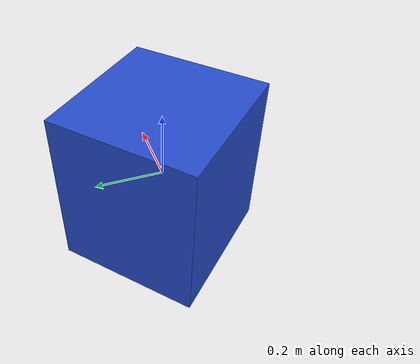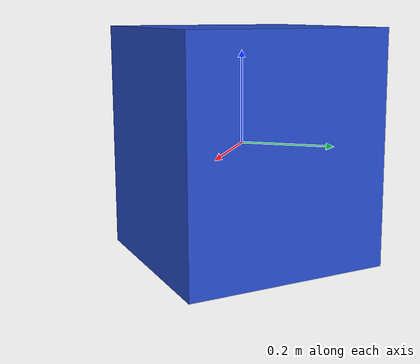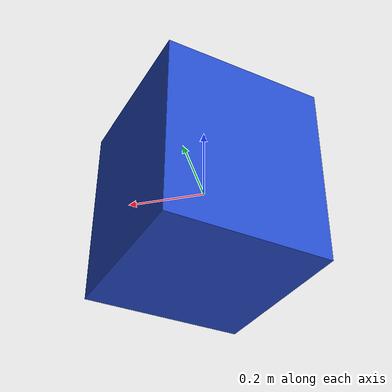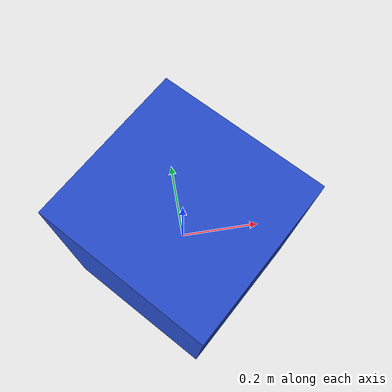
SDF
<sdf version="1.6"><model name="model_9"><link name="link"><pose>0 0 0 0 0 2.3087788678371535</pose><gravity>true</gravity><static>true</static><inertial><mass>1.0</mass><inertia><ixx>0.16666</ixx><ixy>0</ixy><ixz>0</ixz><iyy>0.16666</iyy><iyz>0</iyz><izz>0.16666</izz></inertia></inertial><collision name="collision"><geometry><box><size>0.4405708880114533 0.4272680958171299 0.5</size></box></geometry></collision><visual name="visual"><geometry><box><size>0.4405708880114533 0.4272680958171299 0.5</size></box></geometry><material><script><name>Gazebo/Blue</name><uri>file://media/materials/scripts/gazebo.material</uri></script></material></visual></link></model></sdf>
